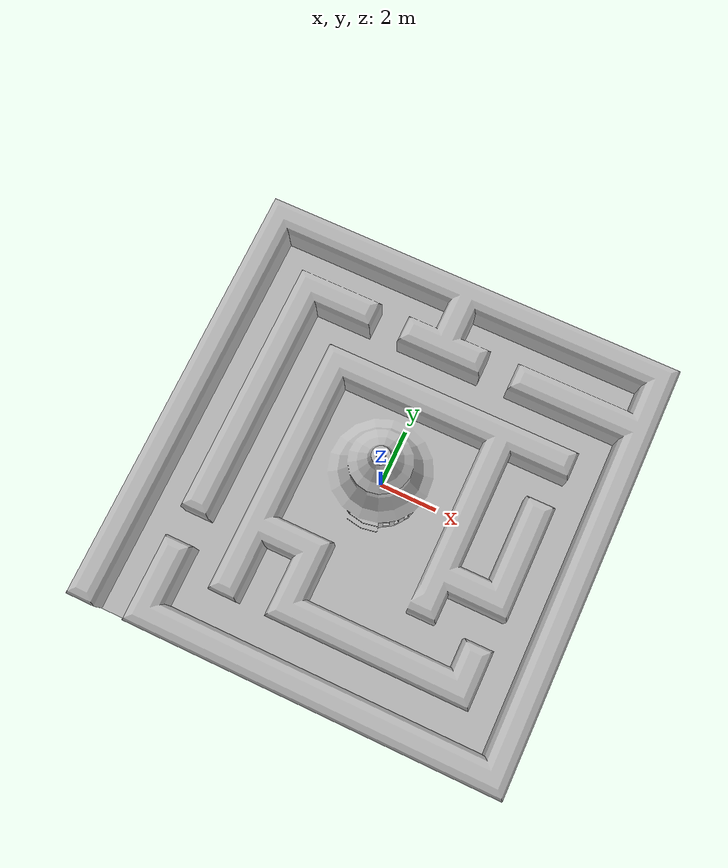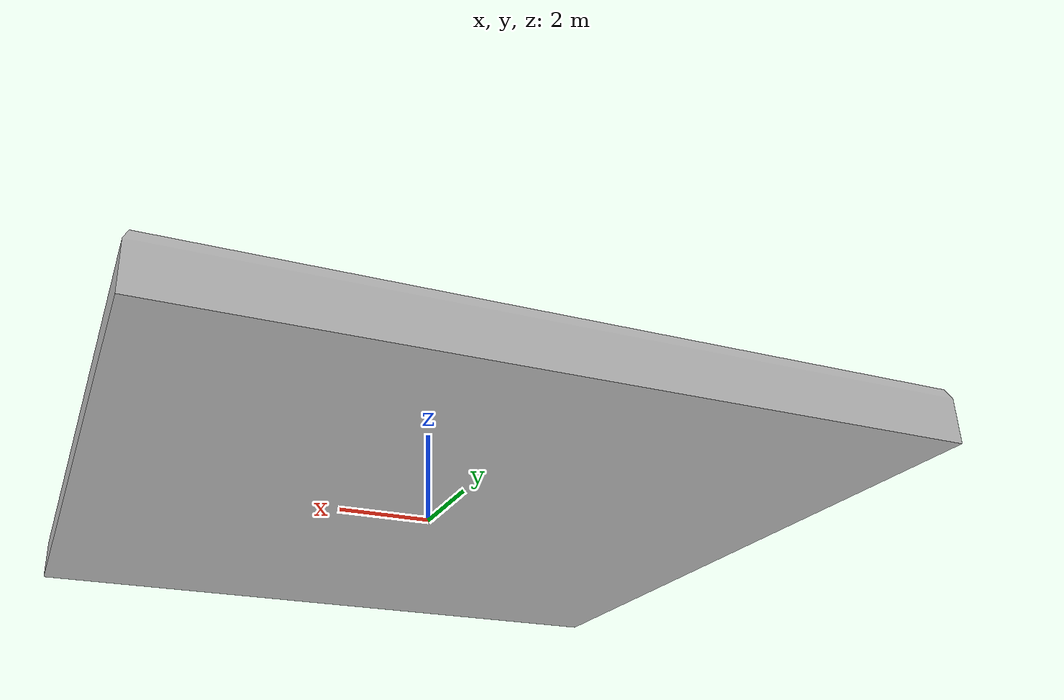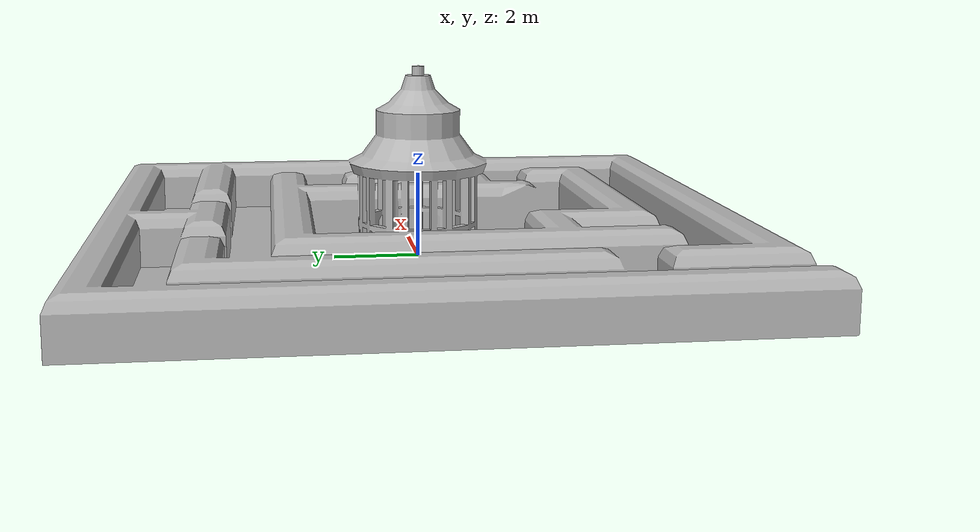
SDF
<?xml version="1.0" ?>
<sdf version="1.6">
  <model name="map_heart_prison">
    <static>true</static>
    <link name="link">
      <visual name="visual">
        <geometry>
          <mesh>
            <uri>model://map_heart_prison/meshes/hear_prison_map.dae</uri>
          </mesh>
        </geometry>
      </visual>
      <collision name="collision">
        <geometry>
          <mesh>
            <uri>model://map_heart_prison/meshes/hear_prison_map.dae</uri>
          </mesh>
        </geometry>
      </collision>
    </link>
  </model>
</sdf>
